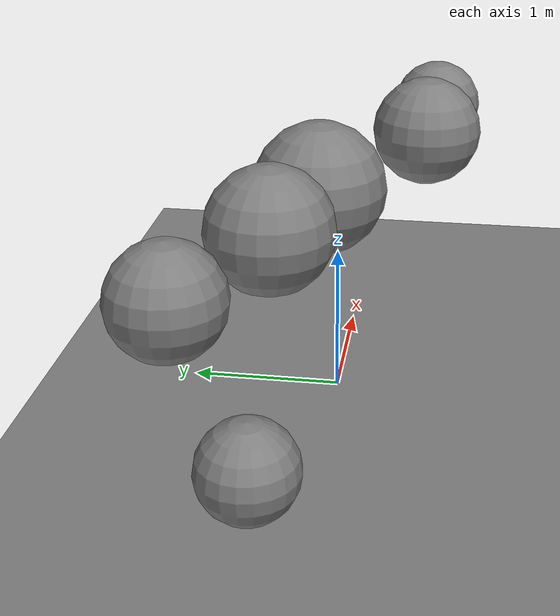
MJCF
<mujoco model="generic inspection quadrotor">
  <compiler angle="radian"/>
  <option timestep="0.001" gravity="0 0 -9.81" integrator="RK4"/>
  <worldbody>
    <geom name="floor" type="plane" size="10 10 .1"/>
    <geom name="obstacle_0" type="sphere" pos="-1.6600012480380102 0.7000244325058412 1.4149999375980997" size="0.34"/>
<geom name="obstacle_1" type="sphere" pos="-0.9300003282231044 0.27986030970085457 1.534999983588845" size="0.39"/>
<geom name="obstacle_2" type="sphere" pos="1.214306433183765e-17 0.12 1.45" size="0.44"/>
<geom name="obstacle_3" type="sphere" pos="0.9200003282231043 -0.5198603097008546 1.5650000164111553" size="0.38"/>
<geom name="obstacle_4" type="sphere" pos="1.6800012480380098 -0.5600244325058412 1.5450000624019002" size="0.32"/>
    <body name="quad" pos="-3.0 0.0 1.35">
      <freejoint/>
      <inertial pos="0 0 0" mass="0.6" diaginertia=".003 .003 .005"/>
      <geom name="body_envelope" type="sphere" size="0.23"/>
    </body>
  </worldbody>
</mujoco>
